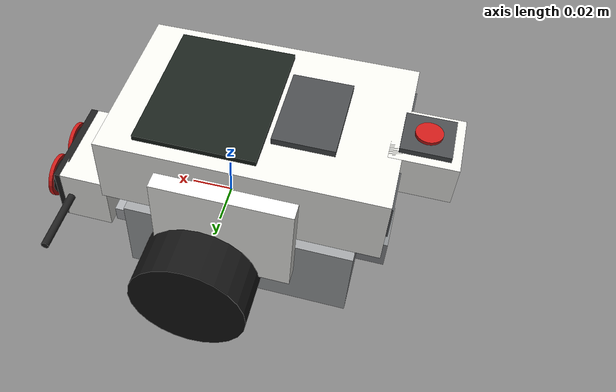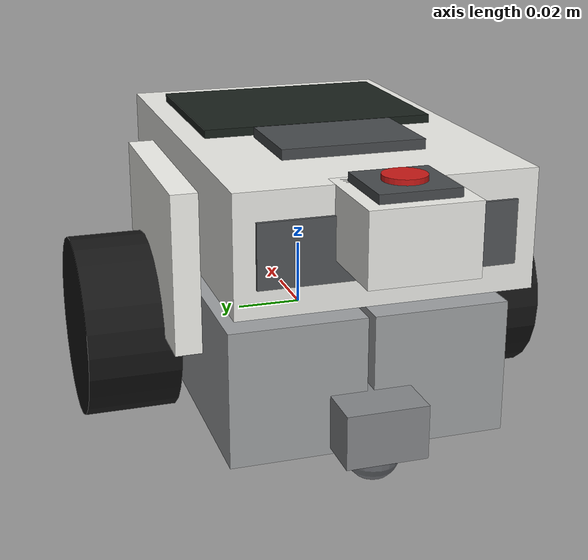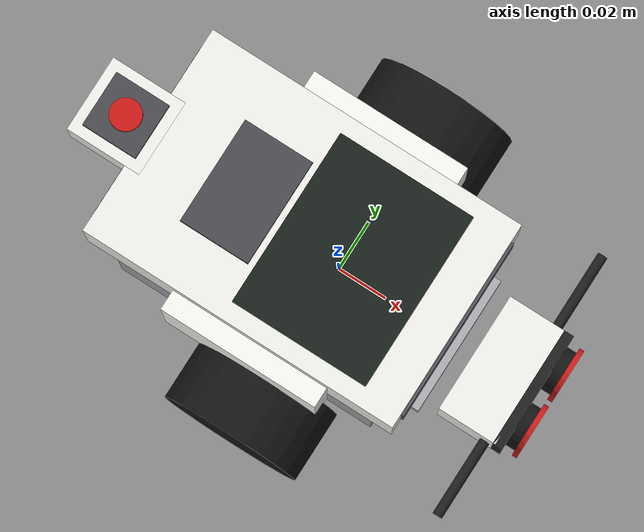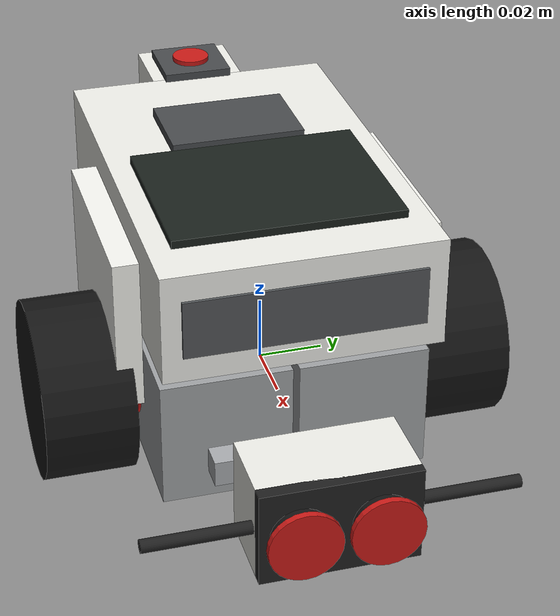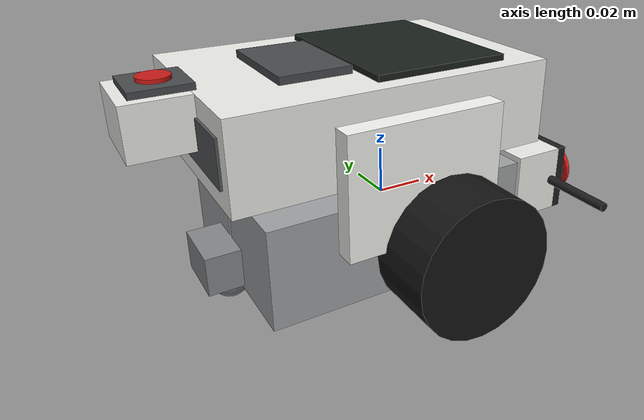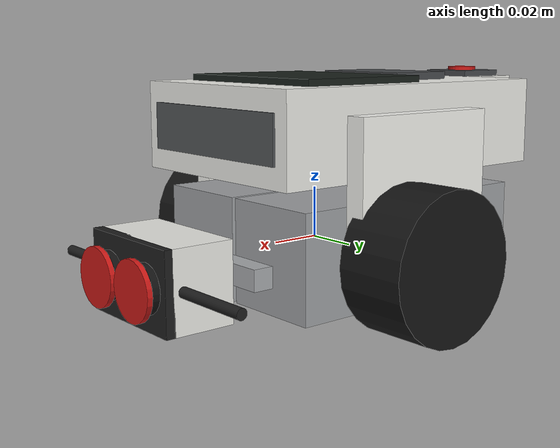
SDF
<?xml version="1.0" ?>
<sdf version="1.11">
  <model name="ev3">
    <self_collide>false</self_collide>

    <!-- Combined brick + motors + Technic frame. Mass ~ brick with pack + 2 large motors + beams. -->
    <link name="base_link">
      <inertial>
        <pose>-0.015 0 0.026 0 0 0</pose>
        <mass>0.475</mass>
        <inertia>
          <ixx>0.00053</ixx>
          <ixy>0</ixy>
          <ixz>0</ixz>
          <iyy>0.00081</iyy>
          <iyz>0</iyz>
          <izz>0.00082</izz>
        </inertia>
      </inertial>

      <!-- Education EV3 brick: ports 1–4 at +X, A–D at −X, screen up. -->
      <visual name="brick">
        <pose>-0.015 0 0.045 0 0 0</pose>
        <geometry>
          <box>
            <size>0.128 0.084 0.034</size>
          </box>
        </geometry>
        <material>
          <ambient>0.88 0.88 0.86 1</ambient>
          <diffuse>0.93 0.93 0.91 1</diffuse>
          <specular>0.15 0.15 0.15 1</specular>
        </material>
      </visual>
      <visual name="brick_screen">
        <pose>0.006 0 0.063 0 0 0</pose>
        <geometry>
          <box>
            <size>0.055 0.070 0.003</size>
          </box>
        </geometry>
        <material>
          <ambient>0.08 0.10 0.09 1</ambient>
          <diffuse>0.10 0.13 0.11 1</diffuse>
        </material>
      </visual>
      <visual name="brick_buttons">
        <pose>-0.038 0 0.063 0 0 0</pose>
        <geometry>
          <box>
            <size>0.028 0.042 0.004</size>
          </box>
        </geometry>
        <material>
          <ambient>0.22 0.23 0.24 1</ambient>
          <diffuse>0.28 0.29 0.30 1</diffuse>
        </material>
      </visual>
      <visual name="brick_ports_front">
        <pose>0.048 0 0.045 0 0 0</pose>
        <geometry>
          <box>
            <size>0.004 0.072 0.018</size>
          </box>
        </geometry>
        <material>
          <ambient>0.25 0.26 0.27 1</ambient>
          <diffuse>0.32 0.33 0.34 1</diffuse>
        </material>
      </visual>
      <visual name="brick_ports_rear">
        <pose>-0.078 0 0.045 0 0 0</pose>
        <geometry>
          <box>
            <size>0.004 0.072 0.018</size>
          </box>
        </geometry>
        <material>
          <ambient>0.25 0.26 0.27 1</ambient>
          <diffuse>0.32 0.33 0.34 1</diffuse>
        </material>
      </visual>
      <collision name="brick_collision">
        <pose>-0.015 0 0.045 0 0 0</pose>
        <geometry>
          <box>
            <size>0.128 0.084 0.034</size>
          </box>
        </geometry>
      </collision>

      <!-- Large motors: 5×5×13.5 modules, axle through the 5×5 body. -->
      <visual name="motor_left">
        <pose>-0.014 0.021 0 0 0 0</pose>
        <geometry>
          <box>
            <size>0.108 0.040 0.040</size>
          </box>
        </geometry>
        <material>
          <ambient>0.55 0.56 0.57 1</ambient>
          <diffuse>0.62 0.63 0.64 1</diffuse>
        </material>
      </visual>
      <visual name="motor_right">
        <pose>-0.014 -0.021 0 0 0 0</pose>
        <geometry>
          <box>
            <size>0.108 0.040 0.040</size>
          </box>
        </geometry>
        <material>
          <ambient>0.55 0.56 0.57 1</ambient>
          <diffuse>0.62 0.63 0.64 1</diffuse>
        </material>
      </visual>
      <visual name="hub_left">
        <pose>0 0.043 0 1.5708 0 0</pose>
        <geometry>
          <cylinder>
            <radius>0.012</radius>
            <length>0.008</length>
          </cylinder>
        </geometry>
        <material>
          <ambient>0.70 0.08 0.07 1</ambient>
          <diffuse>0.79 0.10 0.09 1</diffuse>
        </material>
      </visual>
      <visual name="hub_right">
        <pose>0 -0.043 0 1.5708 0 0</pose>
        <geometry>
          <cylinder>
            <radius>0.012</radius>
            <length>0.008</length>
          </cylinder>
        </geometry>
        <material>
          <ambient>0.70 0.08 0.07 1</ambient>
          <diffuse>0.79 0.10 0.09 1</diffuse>
        </material>
      </visual>
      <collision name="motor_left_collision">
        <pose>-0.014 0.021 0 0 0 0</pose>
        <geometry>
          <box>
            <size>0.108 0.040 0.040</size>
          </box>
        </geometry>
      </collision>
      <collision name="motor_right_collision">
        <pose>-0.014 -0.021 0 0 0 0</pose>
        <geometry>
          <box>
            <size>0.108 0.040 0.040</size>
          </box>
        </geometry>
      </collision>

      <!-- White Technic side beams that clamp the brick to the motors. -->
      <visual name="beam_left">
        <pose>-0.010 0.046 0.028 0 0 0</pose>
        <geometry>
          <box>
            <size>0.064 0.008 0.048</size>
          </box>
        </geometry>
        <material>
          <ambient>0.92 0.92 0.90 1</ambient>
          <diffuse>0.96 0.96 0.94 1</diffuse>
        </material>
      </visual>
      <visual name="beam_right">
        <pose>-0.010 -0.046 0.028 0 0 0</pose>
        <geometry>
          <box>
            <size>0.064 0.008 0.048</size>
          </box>
        </geometry>
        <material>
          <ambient>0.92 0.92 0.90 1</ambient>
          <diffuse>0.96 0.96 0.94 1</diffuse>
        </material>
      </visual>
      <visual name="frame_cross">
        <pose>-0.030 0 -0.004 0 0 0</pose>
        <geometry>
          <box>
            <size>0.016 0.070 0.008</size>
          </box>
        </geometry>
        <material>
          <ambient>0.58 0.59 0.60 1</ambient>
          <diffuse>0.66 0.67 0.68 1</diffuse>
        </material>
      </visual>
      <!-- Front 7-module beam the ultrasonic bracket pins onto. -->
      <visual name="front_beam">
        <pose>0.048 0 -0.004 0 0 0</pose>
        <geometry>
          <box>
            <size>0.008 0.056 0.008</size>
          </box>
        </geometry>
        <material>
          <ambient>0.58 0.59 0.60 1</ambient>
          <diffuse>0.66 0.67 0.68 1</diffuse>
        </material>
      </visual>
      <!-- Rear caster fork (grey/red Technic cup). -->
      <visual name="caster_fork">
        <pose>-0.070 0 -0.010 0 0 0</pose>
        <geometry>
          <box>
            <size>0.024 0.024 0.016</size>
          </box>
        </geometry>
        <material>
          <ambient>0.45 0.46 0.47 1</ambient>
          <diffuse>0.52 0.53 0.54 1</diffuse>
        </material>
      </visual>
    </link>

    <!-- Tire 56×28 ZR on rim 30.4×14. Link rolled so cylinder +Z is the axle. -->
    <link name="wheel_left_link">
      <pose>0 0.059 0 1.5708 0 0</pose>
      <inertial>
        <mass>0.022</mass>
        <inertia>
          <ixx>0.00000575</ixx>
          <ixy>0</ixy>
          <ixz>0</ixz>
          <iyy>0.00000575</iyy>
          <iyz>0</iyz>
          <izz>0.00000862</izz>
        </inertia>
      </inertial>
      <collision name="collision">
        <geometry>
          <cylinder>
            <radius>0.028</radius>
            <length>0.026</length>
          </cylinder>
        </geometry>
        <surface>
          <friction>
            <ode>
              <mu>1.4</mu>
              <mu2>1.4</mu2>
              <slip1>0.0</slip1>
              <slip2>0.0</slip2>
            </ode>
          </friction>
          <contact>
            <ode>
              <kp>1e6</kp>
              <kd>100</kd>
              <max_vel>0.5</max_vel>
              <min_depth>0.0005</min_depth>
            </ode>
          </contact>
        </surface>
      </collision>
      <visual name="tire">
        <geometry>
          <cylinder>
            <radius>0.028</radius>
            <length>0.028</length>
          </cylinder>
        </geometry>
        <material>
          <ambient>0.06 0.06 0.06 1</ambient>
          <diffuse>0.08 0.08 0.08 1</diffuse>
        </material>
      </visual>
      <visual name="rim">
        <geometry>
          <cylinder>
            <radius>0.017</radius>
            <length>0.018</length>
          </cylinder>
        </geometry>
        <material>
          <ambient>0.55 0.56 0.57 1</ambient>
          <diffuse>0.70 0.71 0.72 1</diffuse>
        </material>
      </visual>
    </link>

    <link name="wheel_right_link">
      <pose>0 -0.059 0 1.5708 0 0</pose>
      <inertial>
        <mass>0.022</mass>
        <inertia>
          <ixx>0.00000575</ixx>
          <ixy>0</ixy>
          <ixz>0</ixz>
          <iyy>0.00000575</iyy>
          <iyz>0</iyz>
          <izz>0.00000862</izz>
        </inertia>
      </inertial>
      <collision name="collision">
        <geometry>
          <cylinder>
            <radius>0.028</radius>
            <length>0.026</length>
          </cylinder>
        </geometry>
        <surface>
          <friction>
            <ode>
              <mu>1.4</mu>
              <mu2>1.4</mu2>
              <slip1>0.0</slip1>
              <slip2>0.0</slip2>
            </ode>
          </friction>
          <contact>
            <ode>
              <kp>1e6</kp>
              <kd>100</kd>
              <max_vel>0.5</max_vel>
              <min_depth>0.0005</min_depth>
            </ode>
          </contact>
        </surface>
      </collision>
      <visual name="tire">
        <geometry>
          <cylinder>
            <radius>0.028</radius>
            <length>0.028</length>
          </cylinder>
        </geometry>
        <material>
          <ambient>0.06 0.06 0.06 1</ambient>
          <diffuse>0.08 0.08 0.08 1</diffuse>
        </material>
      </visual>
      <visual name="rim">
        <geometry>
          <cylinder>
            <radius>0.017</radius>
            <length>0.018</length>
          </cylinder>
        </geometry>
        <material>
          <ambient>0.55 0.56 0.57 1</ambient>
          <diffuse>0.70 0.71 0.72 1</diffuse>
        </material>
      </visual>
    </link>

    <!-- Steel ball in the rear Technic cup. Low friction so it does not fight turns. -->
    <link name="caster_link">
      <pose>-0.070 0 -0.020 0 0 0</pose>
      <inertial>
        <mass>0.012</mass>
        <inertia>
          <ixx>0.00000031</ixx>
          <ixy>0</ixy>
          <ixz>0</ixz>
          <iyy>0.00000031</iyy>
          <iyz>0</iyz>
          <izz>0.00000031</izz>
        </inertia>
      </inertial>
      <collision name="collision">
        <geometry>
          <sphere>
            <radius>0.008</radius>
          </sphere>
        </geometry>
        <surface>
          <friction>
            <ode>
              <mu>0.02</mu>
              <mu2>0.02</mu2>
              <slip1>0.05</slip1>
              <slip2>0.05</slip2>
            </ode>
          </friction>
        </surface>
      </collision>
      <visual name="ball">
        <geometry>
          <sphere>
            <radius>0.008</radius>
          </sphere>
        </geometry>
        <material>
          <ambient>0.35 0.36 0.38 1</ambient>
          <diffuse>0.45 0.46 0.48 1</diffuse>
          <specular>0.6 0.6 0.6 1</specular>
        </material>
      </visual>
    </link>

    <!-- Gyro on the rear L-beam tower; red arrows face +Z so it measures yaw. -->
    <link name="gyro_link">
      <pose>-0.088 0 0.052 0 0 0</pose>
      <inertial>
        <mass>0.018</mass>
        <inertia>
          <ixx>0.0000018</ixx>
          <ixy>0</ixy>
          <ixz>0</ixz>
          <iyy>0.0000018</iyy>
          <iyz>0</iyz>
          <izz>0.0000018</izz>
        </inertia>
      </inertial>
      <collision name="collision">
        <geometry>
          <box>
            <size>0.030 0.030 0.020</size>
          </box>
        </geometry>
      </collision>
      <visual name="body">
        <geometry>
          <box>
            <size>0.030 0.030 0.020</size>
          </box>
        </geometry>
        <material>
          <ambient>0.88 0.88 0.86 1</ambient>
          <diffuse>0.93 0.93 0.91 1</diffuse>
        </material>
      </visual>
      <visual name="cap">
        <pose>0 0 0.011 0 0 0</pose>
        <geometry>
          <box>
            <size>0.022 0.022 0.003</size>
          </box>
        </geometry>
        <material>
          <ambient>0.22 0.23 0.24 1</ambient>
          <diffuse>0.28 0.29 0.30 1</diffuse>
        </material>
      </visual>
      <visual name="yaw_mark">
        <pose>0 0 0.013 0 0 0</pose>
        <geometry>
          <cylinder>
            <radius>0.006</radius>
            <length>0.002</length>
          </cylinder>
        </geometry>
        <material>
          <ambient>0.70 0.08 0.07 1</ambient>
          <diffuse>0.79 0.10 0.09 1</diffuse>
        </material>
      </visual>
      <visual name="mount">
        <pose>0.018 0 -0.006 0 0 0</pose>
        <geometry>
          <box>
            <size>0.016 0.016 0.024</size>
          </box>
        </geometry>
        <material>
          <ambient>0.92 0.92 0.90 1</ambient>
          <diffuse>0.96 0.96 0.94 1</diffuse>
        </material>
      </visual>
      <sensor name="imu_sensor" type="imu">
        <always_on>true</always_on>
        <update_rate>20</update_rate>
        <topic>imu</topic>
        <visualize>false</visualize>
        <imu>
          <angular_velocity>
            <x>
              <noise type="gaussian">
                <mean>0</mean>
                <stddev>0.002</stddev>
              </noise>
            </x>
            <y>
              <noise type="gaussian">
                <mean>0</mean>
                <stddev>0.002</stddev>
              </noise>
            </y>
            <z>
              <noise type="gaussian">
                <mean>0</mean>
                <stddev>0.015</stddev>
              </noise>
            </z>
          </angular_velocity>
        </imu>
      </sensor>
    </link>

    <link name="ultrasonic_link">
      <pose>0.078 0 -0.004 0 0 0</pose>
      <inertial>
        <mass>0.025</mass>
        <inertia>
          <ixx>0.0000047</ixx>
          <ixy>0</ixy>
          <ixz>0</ixz>
          <iyy>0.0000047</iyy>
          <iyz>0</iyz>
          <izz>0.0000047</izz>
        </inertia>
      </inertial>
      <collision name="collision">
        <pose>-0.008 0 0 0 0 0</pose>
        <geometry>
          <box>
            <size>0.028 0.050 0.030</size>
          </box>
        </geometry>
      </collision>
      <visual name="body">
        <pose>-0.008 0 0 0 0 0</pose>
        <geometry>
          <box>
            <size>0.024 0.048 0.030</size>
          </box>
        </geometry>
        <material>
          <ambient>0.88 0.88 0.86 1</ambient>
          <diffuse>0.93 0.93 0.91 1</diffuse>
        </material>
      </visual>
      <visual name="face">
        <pose>0.005 0 0 0 0 0</pose>
        <geometry>
          <box>
            <size>0.004 0.048 0.030</size>
          </box>
        </geometry>
        <material>
          <ambient>0.10 0.10 0.10 1</ambient>
          <diffuse>0.12 0.12 0.12 1</diffuse>
        </material>
      </visual>
      <visual name="eye_left">
        <pose>0.008 0.012 0 0 1.5708 0</pose>
        <geometry>
          <cylinder>
            <radius>0.009</radius>
            <length>0.008</length>
          </cylinder>
        </geometry>
        <material>
          <ambient>0.05 0.05 0.05 1</ambient>
          <diffuse>0.08 0.08 0.08 1</diffuse>
        </material>
      </visual>
      <visual name="eye_right">
        <pose>0.008 -0.012 0 0 1.5708 0</pose>
        <geometry>
          <cylinder>
            <radius>0.009</radius>
            <length>0.008</length>
          </cylinder>
        </geometry>
        <material>
          <ambient>0.05 0.05 0.05 1</ambient>
          <diffuse>0.08 0.08 0.08 1</diffuse>
        </material>
      </visual>
      <visual name="ring_left">
        <pose>0.012 0.012 0 0 1.5708 0</pose>
        <geometry>
          <cylinder>
            <radius>0.011</radius>
            <length>0.002</length>
          </cylinder>
        </geometry>
        <material>
          <ambient>0.70 0.08 0.07 1</ambient>
          <diffuse>0.79 0.10 0.09 1</diffuse>
        </material>
      </visual>
      <visual name="ring_right">
        <pose>0.012 -0.012 0 0 1.5708 0</pose>
        <geometry>
          <cylinder>
            <radius>0.011</radius>
            <length>0.002</length>
          </cylinder>
        </geometry>
        <material>
          <ambient>0.70 0.08 0.07 1</ambient>
          <diffuse>0.79 0.10 0.09 1</diffuse>
        </material>
      </visual>
      <visual name="whisker_left">
        <pose>0 0.040 0 1.5708 0 0</pose>
        <geometry>
          <cylinder>
            <radius>0.002</radius>
            <length>0.032</length>
          </cylinder>
        </geometry>
        <material>
          <ambient>0.08 0.08 0.08 1</ambient>
          <diffuse>0.12 0.12 0.12 1</diffuse>
        </material>
      </visual>
      <visual name="whisker_right">
        <pose>0 -0.040 0 1.5708 0 0</pose>
        <geometry>
          <cylinder>
            <radius>0.002</radius>
            <length>0.032</length>
          </cylinder>
        </geometry>
        <material>
          <ambient>0.08 0.08 0.08 1</ambient>
          <diffuse>0.12 0.12 0.12 1</diffuse>
        </material>
      </visual>
      <sensor name="ultrasonic" type="gpu_lidar">
        <always_on>true</always_on>
        <update_rate>10</update_rate>
        <topic>ultrasonic</topic>
        <visualize>true</visualize>
        <lidar>
          <scan>
            <horizontal>
              <samples>7</samples>
              <resolution>1</resolution>
              <min_angle>-0.25</min_angle>
              <max_angle>0.25</max_angle>
            </horizontal>
            <vertical>
              <samples>1</samples>
              <resolution>1</resolution>
              <min_angle>0</min_angle>
              <max_angle>0</max_angle>
            </vertical>
          </scan>
          <range>
            <min>0.03</min>
            <max>2.55</max>
            <resolution>0.01</resolution>
          </range>
          <noise>
            <type>gaussian</type>
            <mean>0.0</mean>
            <stddev>0.005</stddev>
          </noise>
        </lidar>
      </sensor>
    </link>

    <joint name="wheel_left_joint" type="revolute">
      <parent>base_link</parent>
      <child>wheel_left_link</child>
      <axis>
        <xyz>0 0 -1</xyz>
        <limit>
          <lower>-1.79769e+308</lower>
          <upper>1.79769e+308</upper>
        </limit>
      </axis>
    </joint>
    <joint name="wheel_right_joint" type="revolute">
      <parent>base_link</parent>
      <child>wheel_right_link</child>
      <axis>
        <xyz>0 0 -1</xyz>
        <limit>
          <lower>-1.79769e+308</lower>
          <upper>1.79769e+308</upper>
        </limit>
      </axis>
    </joint>
    <joint name="caster_joint" type="ball">
      <parent>base_link</parent>
      <child>caster_link</child>
    </joint>
    <joint name="gyro_joint" type="fixed">
      <parent>base_link</parent>
      <child>gyro_link</child>
    </joint>
    <joint name="ultrasonic_joint" type="fixed">
      <parent>base_link</parent>
      <child>ultrasonic_link</child>
    </joint>

    <plugin filename="gz-sim-diff-drive-system" name="gz::sim::systems::DiffDrive">
      <left_joint>wheel_left_joint</left_joint>
      <right_joint>wheel_right_joint</right_joint>
      <wheel_separation>0.118</wheel_separation>
      <wheel_radius>0.028</wheel_radius>
      <topic>/model/ev3/cmd_vel</topic>
      <frame_id>odom</frame_id>
      <child_frame_id>base_link</child_frame_id>
      <odom_publish_frequency>20</odom_publish_frequency>
      <max_linear_velocity>0.15</max_linear_velocity>
      <min_linear_velocity>-0.15</min_linear_velocity>
      <max_angular_velocity>1.2</max_angular_velocity>
      <min_angular_velocity>-1.2</min_angular_velocity>
    </plugin>
    <plugin filename="gz-sim-joint-state-publisher-system" name="gz::sim::systems::JointStatePublisher">
      <joint_name>wheel_left_joint</joint_name>
      <joint_name>wheel_right_joint</joint_name>
    </plugin>
    <plugin filename="gz-sim-pose-publisher-system" name="gz::sim::systems::PosePublisher">
      <publish_link_pose>true</publish_link_pose>
      <use_pose_vector_msg>true</use_pose_vector_msg>
      <static_publisher>true</static_publisher>
      <static_update_frequency>1</static_update_frequency>
    </plugin>
  </model>
</sdf>
